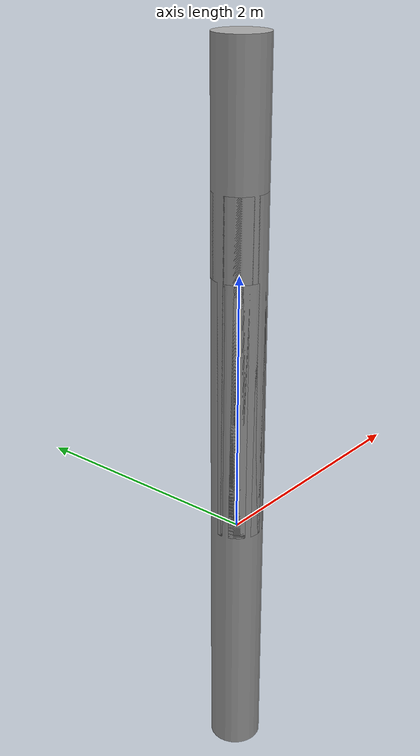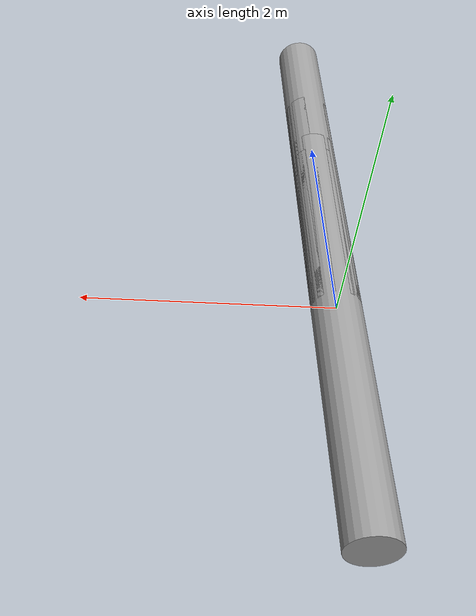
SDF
<?xml version='1.0'?>
<sdf version='1.6'>
  <model name='FourBar'>
    <link name='base_link'>
      <pose frame=''>0 0 0 0 -0 0</pose>
      <inertial>
        <mass>1</mass>
        <inertia>
          <ixx>1</ixx>
          <ixy>0</ixy>
          <ixz>0</ixz>
          <iyy>1</iyy>
          <iyz>0</iyz>
          <izz>1</izz>
        </inertia>
      </inertial>
      <self_collide>0</self_collide>
      <kinematic>0</kinematic>
      <visual name='base'>
        <pose frame=''>0 0 0 0 -0 0</pose>
        <geometry>
          <cylinder>
            <length>4</length>
            <radius>0.2</radius>
          </cylinder>
        </geometry>
        <material>
          <diffuse>0.6353 0.6353 0.6353 1</diffuse>
          <ambient>1 1 1 1</ambient>
          <specular>0 0 0 1</specular>
          <emissive>0 0 0 1</emissive>
          <script>
            <name>ModelPreview_1::base_link::base_MATERIAL_</name>
            <uri>__default__</uri>
          </script>
        </material>
        <cast_shadows>1</cast_shadows>
        <transparency>0</transparency>
      </visual>
    </link>
    <link name='link_1'>
      <pose frame=''>0 0 0 0 -0 0</pose>
      <inertial>
        <mass>1</mass>
        <inertia>
          <ixx>1</ixx>
          <ixy>0</ixy>
          <ixz>0</ixz>
          <iyy>1</iyy>
          <iyz>0</iyz>
          <izz>1</izz>
        </inertia>
      </inertial>
      <self_collide>0</self_collide>
      <kinematic>0</kinematic>
      <visual name='link1'>
        <pose frame=''>0 0 0.9 0 -0 0</pose>
        <geometry>
          <cylinder>
            <length>1.8</length>
            <radius>0.2</radius>
          </cylinder>
        </geometry>
        <material>
          <diffuse>0.6353 0.6353 0.6353 1</diffuse>
          <ambient>1 1 1 1</ambient>
          <specular>0 0 0 1</specular>
          <emissive>0 0 0 1</emissive>
          <script>
            <name>ModelPreview_1::link_1::link1_MATERIAL_</name>
            <uri>__default__</uri>
          </script>
        </material>
        <cast_shadows>1</cast_shadows>
        <transparency>0</transparency>
      </visual>
    </link>
    <link name='link_2'>
      <pose frame=''>0 0 0 0 -0 0</pose>
      <inertial>
        <mass>1</mass>
        <inertia>
          <ixx>1</ixx>
          <ixy>0</ixy>
          <ixz>0</ixz>
          <iyy>1</iyy>
          <iyz>0</iyz>
          <izz>1</izz>
        </inertia>
      </inertial>
      <self_collide>0</self_collide>
      <kinematic>0</kinematic>
      <visual name='link2'>
        <pose frame=''>0 0 1.8 0 -0 0</pose>
        <geometry>
          <cylinder>
            <length>3.6</length>
            <radius>0.2</radius>
          </cylinder>
        </geometry>
        <material>
          <diffuse>0.6353 0.6353 0.6353 1</diffuse>
          <ambient>1 1 1 1</ambient>
          <specular>0 0 0 1</specular>
          <emissive>0 0 0 1</emissive>
          <script>
            <name>ModelPreview_1::link_2::link2_MATERIAL_</name>
            <uri>__default__</uri>
          </script>
        </material>
        <cast_shadows>1</cast_shadows>
        <transparency>0</transparency>
      </visual>
    </link>
    <link name='link_3'>
      <pose frame=''>0 0 0 0 -0 0</pose>
      <inertial>
        <mass>1</mass>
        <inertia>
          <ixx>1</ixx>
          <ixy>0</ixy>
          <ixz>0</ixz>
          <iyy>1</iyy>
          <iyz>0</iyz>
          <izz>1</izz>
        </inertia>
      </inertial>
      <self_collide>0</self_collide>
      <kinematic>0</kinematic>
      <visual name='link3'>
        <pose frame=''>0 0 1.3 0 -0 0</pose>
        <geometry>
          <cylinder>
            <length>2.6</length>
            <radius>0.2</radius>
          </cylinder>
        </geometry>
        <material>
          <diffuse>0.6353 0.6353 0.6353 1</diffuse>
          <ambient>1 1 1 1</ambient>
          <specular>0 0 0 1</specular>
          <emissive>0 0 0 1</emissive>
          <script>
            <name>ModelPreview_1::link_3::link3_MATERIAL_</name>
            <uri>__default__</uri>
          </script>
        </material>
        <cast_shadows>1</cast_shadows>
        <transparency>0</transparency>
      </visual>
    </link>
    <joint name='joint_0' type='revolute'>
      <parent>base_link</parent>
      <child>link_1</child>
      <pose frame=''>0 0 2 0 -0 0</pose>
      <axis>
        <xyz>0 1 0</xyz>
        <use_parent_model_frame>0</use_parent_model_frame>
        <limit>
          <lower>-1e+16</lower>
          <upper>1e+16</upper>
          <effort>-1</effort>
          <velocity>-1</velocity>
        </limit>
        <dynamics>
          <spring_reference>0</spring_reference>
          <spring_stiffness>0</spring_stiffness>
          <damping>0</damping>
          <friction>0</friction>
        </dynamics>
      </axis>
      <physics>
        <ode>
          <limit>
            <cfm>0</cfm>
            <erp>0.2</erp>
          </limit>
          <suspension>
            <cfm>0</cfm>
            <erp>0.2</erp>
          </suspension>
        </ode>
      </physics>
    </joint>
    <joint name='joint_1' type='revolute'>
      <parent>link_1</parent>
      <child>link_2</child>
      <pose frame=''>0 0 1.8 0 -0 0</pose>
      <axis>
        <xyz>0 1 0</xyz>
        <use_parent_model_frame>0</use_parent_model_frame>
        <limit>
          <lower>-1e+16</lower>
          <upper>1e+16</upper>
          <effort>100</effort>
          <velocity>-1</velocity>
        </limit>
        <dynamics>
          <spring_reference>0</spring_reference>
          <spring_stiffness>0</spring_stiffness>
          <damping>0</damping>
          <friction>0</friction>
        </dynamics>
      </axis>
      <physics>
        <ode>
          <limit>
            <cfm>0</cfm>
            <erp>0.2</erp>
          </limit>
          <suspension>
            <cfm>0</cfm>
            <erp>0.2</erp>
          </suspension>
        </ode>
      </physics>
    </joint>
    <joint name='joint_2' type='revolute'>
      <parent>link_2</parent>
      <child>link_3</child>
      <pose frame=''>0 0 3.6 0 -0 0</pose>
      <axis>
        <xyz>0 1 0</xyz>
        <use_parent_model_frame>0</use_parent_model_frame>
        <limit>
          <lower>-1e+16</lower>
          <upper>1e+16</upper>
          <effort>-1</effort>
          <velocity>-1</velocity>
        </limit>
        <dynamics>
          <spring_reference>0</spring_reference>
          <spring_stiffness>0</spring_stiffness>
          <damping>0</damping>
          <friction>0</friction>
        </dynamics>
      </axis>
      <physics>
        <ode>
          <limit>
            <cfm>0</cfm>
            <erp>0.2</erp>
          </limit>
          <suspension>
            <cfm>0</cfm>
            <erp>0.2</erp>
          </suspension>
        </ode>
      </physics>
    </joint>
    <joint name='joint_3' type='revolute'>
      <parent>base_link</parent>
      <child>link_3</child>
      <pose frame=''>0 0 2.6 0 -0 0</pose>
      <axis>
        <xyz>0 1 0</xyz>
        <use_parent_model_frame>0</use_parent_model_frame>
        <limit>
          <lower>-1e+16</lower>
          <upper>1e+16</upper>
          <effort>-1</effort>
          <velocity>-1</velocity>
        </limit>
        <dynamics>
          <spring_reference>0</spring_reference>
          <spring_stiffness>0</spring_stiffness>
          <damping>0</damping>
          <friction>0</friction>
        </dynamics>
      </axis>
      <physics>
        <ode>
          <limit>
            <cfm>0</cfm>
            <erp>0.2</erp>
          </limit>
          <suspension>
            <cfm>0</cfm>
            <erp>0.2</erp>
          </suspension>
        </ode>
      </physics>
    </joint>
    <static>0</static>
    <allow_auto_disable>1</allow_auto_disable>
  </model>
</sdf>
